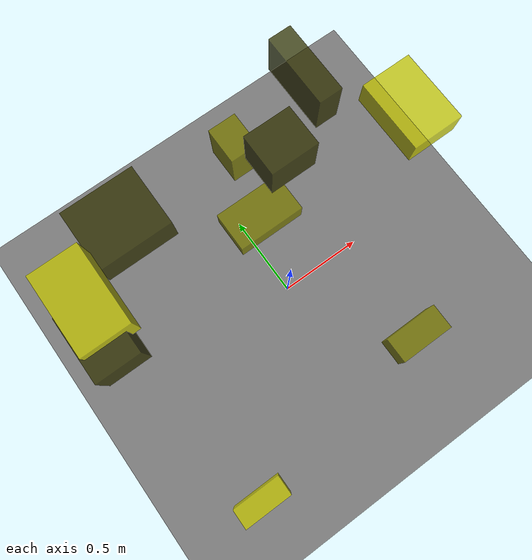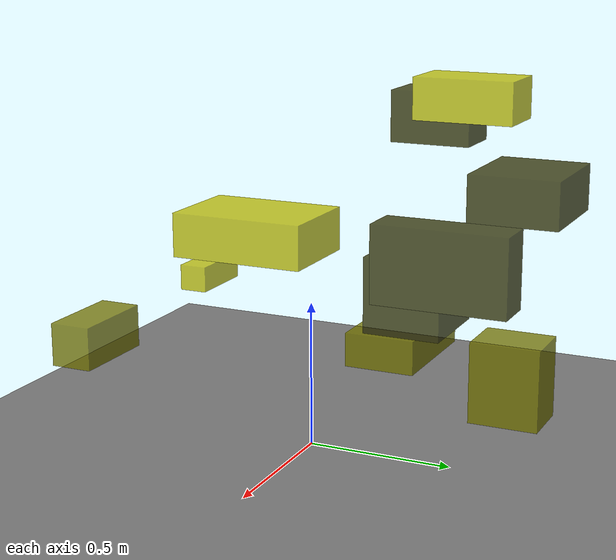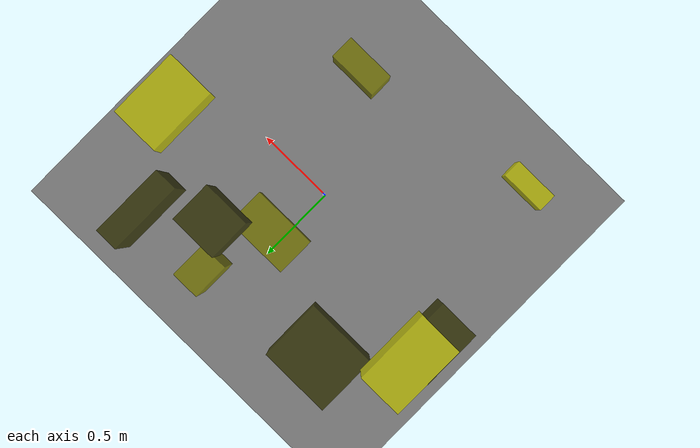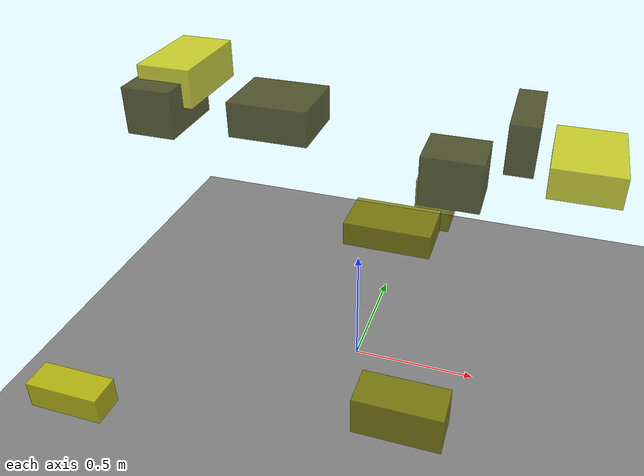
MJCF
<?xml version="1.0"?>
<mujoco model="obstacle_scene">
  <compiler angle="radian" coordinate="local"/>
  <option timestep="0.001" gravity="0 0 -9.81"/>

  <asset>
    <material name="obstacle_mat" rgba="0.8 0.8 0.0 0.8"/>
    <material name="ground_mat" rgba="0.5 0.5 0.5 1"/>
  </asset>

  <worldbody>
    <!-- Ground plane -->
    <geom name="ground" type="plane" size="3 3 0.1" material="ground_mat"/>

    <!-- Obstacles -->
    <body name="obstacle_0" pos="0.286760 0.489062 0.681768">
      <geom name="obs_0" type="box" size="0.136055 0.118735 0.116217" rgba="0.2 0.2 0.0 0.8"/>
    </body>
    <body name="obstacle_1" pos="0.332421 -0.635030 0.402580">
      <geom name="obs_1" type="box" size="0.149478 0.070164 0.071853" rgba="0.5 0.5 0.0 0.8"/>
    </body>
    <body name="obstacle_2" pos="-0.782986 -0.833229 0.331141">
      <geom name="obs_2" type="box" size="0.136388 0.055178 0.050892" rgba="0.8 0.8 0.0 0.8"/>
    </body>
    <body name="obstacle_3" pos="-0.854460 0.125863 1.023709">
      <geom name="obs_3" type="box" size="0.101447 0.153536 0.097369" rgba="0.2 0.2 0.0 0.8"/>
    </body>
    <body name="obstacle_4" pos="0.175966 0.756408 0.398333">
      <geom name="obs_4" type="box" size="0.084775 0.108923 0.127612" rgba="0.5 0.5 0.0 0.8"/>
    </body>
    <body name="obstacle_5" pos="-0.826116 0.264005 1.099536">
      <geom name="obs_5" type="box" size="0.112418 0.191244 0.079456" rgba="0.8 0.8 0.0 0.8"/>
    </body>
    <body name="obstacle_6" pos="-0.553272 0.573597 0.822628">
      <geom name="obs_6" type="box" size="0.188995 0.162291 0.084156" rgba="0.2 0.2 0.0 0.8"/>
    </body>
    <body name="obstacle_7" pos="0.054075 0.347302 0.443415">
      <geom name="obs_7" type="box" size="0.191643 0.113130 0.054122" rgba="0.5 0.5 0.0 0.8"/>
    </body>
    <body name="obstacle_8" pos="0.799581 0.220601 0.940748">
      <geom name="obs_8" type="box" size="0.129050 0.185721 0.060250" rgba="0.8 0.8 0.0 0.8"/>
    </body>
    <body name="obstacle_9" pos="0.552447 0.670923 0.831958">
      <geom name="obs_9" type="box" size="0.062363 0.199682 0.114642" rgba="0.2 0.2 0.0 0.8"/>
    </body>
  </worldbody>
</mujoco>
